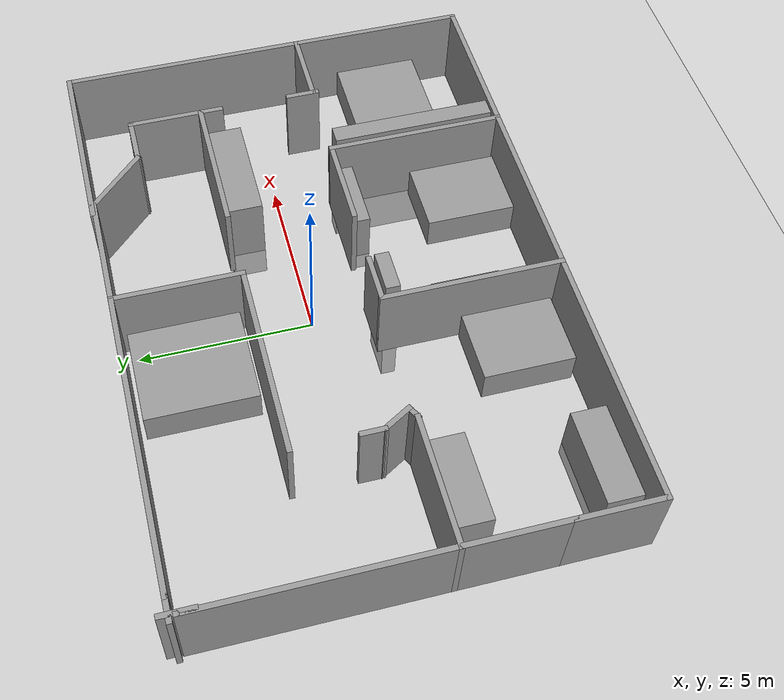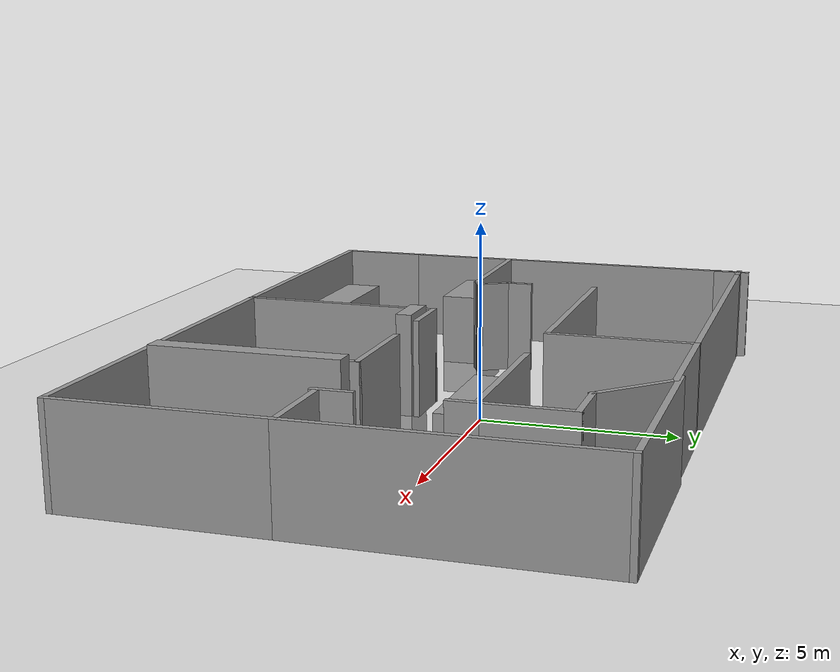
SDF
<sdf version="1.6">
 <world name="default">
  <light name="sun" type="directional">
   <pose>0 0 10 0 -0 0</pose>
   <diffuse>0.8 0.8 0.8 1</diffuse>
   <specular>0.2 0.2 0.2 1</specular>
   <attenuation>
    <range>1000</range>
    <constant>0.9</constant>
    <linear>0.01</linear>
    <quadratic>0.001</quadratic>
   </attenuation>
   <direction>-0.5 0.1 -0.9</direction>
  </light>
  <model name="ground_plane">
   <static>1</static>
   <link name="link">
    <collision name="collision">
     <geometry><plane><normal>0 0 1</normal><size>100 100</size></plane></geometry>
     <surface>
      <contact><collide_bitmask>65535</collide_bitmask></contact>
      <friction><ode><mu>100</mu><mu2>50</mu2></ode></friction>
     </surface>
    </collision>
    <visual name="visual">
     <cast_shadows>0</cast_shadows>
     <geometry><plane><normal>0 0 1</normal><size>100 100</size></plane></geometry>
     <material>
      <script><uri>file://media/materials/scripts/gazebo.material</uri><name>Gazebo/Grey</name></script>
     </material>
    </visual>
   </link>
  </model>
  <gravity>0 0 -9.8</gravity>
  <magnetic_field>6e-06 2.3e-05 -4.2e-05</magnetic_field>
  <atmosphere type="adiabatic"/>
  <physics name="default_physics" default="0" type="ode">
   <max_step_size>0.001</max_step_size>
   <real_time_factor>1</real_time_factor>
   <real_time_update_rate>1000</real_time_update_rate>
  </physics>
  <scene><ambient>0.4 0.4 0.4 1</ambient><background>0.7 0.7 0.7 1</background><shadows>1</shadows></scene>
  <audio><device>default</device></audio>
  <spherical_coordinates>
   <surface_model>EARTH_WGS84</surface_model>
   <latitude_deg>0</latitude_deg>
   <longitude_deg>0</longitude_deg>
   <elevation>0</elevation>
   <heading_deg>0</heading_deg>
  </spherical_coordinates>
  <model name="obere_etage">
   <pose>0.059253 -0.557998 0 0 -0 0</pose>
   <link name="Wall_10">
    <collision name="Wall_10_Collision">
     <geometry><box><size>3.75 0.15 2.5</size></box></geometry>
     <pose>0 0 1.25 0 -0 0</pose>
    </collision>
    <visual name="Wall_10_Visual">
     <pose>0 0 1.25 0 -0 0</pose>
     <geometry><box><size>3.75 0.15 2.5</size></box></geometry>
     <material>
      <script><uri>file://media/materials/scripts/gazebo.material</uri><name>Gazebo/Grey</name></script>
      <ambient>1 1 1 1</ambient>
     </material>
     <meta><layer>0</layer></meta>
    </visual>
    <pose>0.407538 4.15765 0 0 -0 1.5708</pose>
   </link>
   <link name="Wall_11">
    <collision name="Wall_11_Collision">
     <geometry><box><size>3.5 0.15 2.5</size></box></geometry>
     <pose>0 0 1.25 0 -0 0</pose>
    </collision>
    <visual name="Wall_11_Visual">
     <pose>0 0 1.25 0 -0 0</pose>
     <geometry><box><size>3.5 0.15 2.5</size></box></geometry>
     <material>
      <script><uri>file://media/materials/scripts/gazebo.material</uri><name>Gazebo/Grey</name></script>
      <ambient>1 1 1 1</ambient>
     </material>
     <meta><layer>0</layer></meta>
    </visual>
    <pose>2.08254 5.95765 0 0 -0 0</pose>
   </link>
   <link name="Wall_12">
    <collision name="Wall_12_Collision">
     <geometry><box><size>2.25 0.15 2.5</size></box></geometry>
     <pose>0 0 1.25 0 -0 0</pose>
    </collision>
    <visual name="Wall_12_Visual">
     <pose>0 0 1.25 0 -0 0</pose>
     <geometry><box><size>2.25 0.15 2.5</size></box></geometry>
     <material>
      <script><uri>file://media/materials/scripts/gazebo.material</uri><name>Gazebo/Grey</name></script>
      <ambient>1 1 1 1</ambient>
     </material>
     <meta><layer>0</layer></meta>
    </visual>
    <pose>4.5 5.21519 0 0 -0 -0.785398</pose>
   </link>
   <link name="Wall_13">
    <collision name="Wall_13_Collision">
     <geometry><box><size>1.5 0.15 2.5</size></box></geometry>
     <pose>0 0 1.25 0 -0 0</pose>
    </collision>
    <visual name="Wall_13_Visual">
     <pose>0 0 1.25 0 -0 0</pose>
     <geometry><box><size>1.5 0.15 2.5</size></box></geometry>
     <material>
      <script><uri>file://media/materials/scripts/gazebo.material</uri><name>Gazebo/Grey</name></script>
      <ambient>1 1 1 1</ambient>
     </material>
     <meta><layer>0</layer></meta>
    </visual>
    <pose>5.91746 4.47273 0 0 -0 0</pose>
   </link>
   <link name="Wall_14">
    <collision name="Wall_14_Collision">
     <geometry><box><size>2.25 0.15 2.5</size></box></geometry>
     <pose>0 0 1.25 0 -0 0</pose>
    </collision>
    <visual name="Wall_14_Visual">
     <pose>0 0 1.25 0 -0 0</pose>
     <geometry><box><size>2.25 0.15 2.5</size></box></geometry>
     <material>
      <script><uri>file://media/materials/scripts/gazebo.material</uri><name>Gazebo/Grey</name></script>
      <ambient>1 1 1 1</ambient>
     </material>
     <meta><layer>0</layer></meta>
    </visual>
    <pose>6.59246 3.42273 0 0 -0 -1.5708</pose>
   </link>
   <link name="Wall_15">
    <collision name="Wall_15_Collision">
     <geometry><box><size>4.25 0.15 2.5</size></box></geometry>
     <pose>0 0 1.25 0 -0 0</pose>
    </collision>
    <visual name="Wall_15_Visual">
     <pose>0 0 1.25 0 -0 0</pose>
     <geometry><box><size>4.25 0.15 2.5</size></box></geometry>
     <material>
      <script><uri>file://media/materials/scripts/gazebo.material</uri><name>Gazebo/Grey</name></script>
      <ambient>1 1 1 1</ambient>
     </material>
     <meta><layer>0</layer></meta>
    </visual>
    <pose>4.54246 2.37273 0 0 -0 3.14159</pose>
   </link>
   <link name="Wall_23">
    <collision name="Wall_23_Collision">
     <geometry><box><size>0.75 0.15 2.5</size></box></geometry>
     <pose>0 0 1.25 0 -0 0</pose>
    </collision>
    <visual name="Wall_23_Visual">
     <pose>0 0 1.25 0 -0 0</pose>
     <geometry><box><size>0.75 0.15 2.5</size></box></geometry>
     <material>
      <script><uri>file://media/materials/scripts/gazebo.material</uri><name>Gazebo/Grey</name></script>
      <ambient>1 1 1 1</ambient>
     </material>
     <meta><layer>0</layer></meta>
    </visual>
    <pose>-5.19246 0.207654 0 0 -0 -1.5708</pose>
   </link>
   <link name="Wall_24">
    <collision name="Wall_24_Collision">
     <geometry><box><size>1 0.15 2.5</size></box></geometry>
     <pose>0 0 1.25 0 -0 0</pose>
    </collision>
    <visual name="Wall_24_Visual">
     <pose>0 0 1.25 0 -0 0</pose>
     <geometry><box><size>1 0.15 2.5</size></box></geometry>
     <material>
      <script><uri>file://media/materials/scripts/gazebo.material</uri><name>Gazebo/Grey</name></script>
      <ambient>1 1 1 1</ambient>
     </material>
     <meta><layer>0</layer></meta>
    </visual>
    <pose>-4.97996 -0.460407 0 0 -0 -1.0472</pose>
   </link>
   <link name="Wall_26">
    <collision name="Wall_26_Collision">
     <geometry><box><size>0.476016 0.15 2.5</size></box></geometry>
     <pose>0 0 1.25 0 -0 0</pose>
    </collision>
    <visual name="Wall_26_Visual">
     <pose>0 0 1.25 0 -0 0</pose>
     <geometry><box><size>0.476016 0.15 2.5</size></box></geometry>
     <material>
      <script><uri>file://media/materials/scripts/gazebo.material</uri><name>Gazebo/Grey</name></script>
      <ambient>1 1 1 1</ambient>
     </material>
     <meta><layer>0</layer></meta>
    </visual>
    <pose>-4.9125 -0.902869 0 0 -0 0.473976</pose>
   </link>
   <link name="Wall_40">
    <collision name="Wall_40_Collision">
     <geometry><box><size>8.75 0.15 2.5</size></box></geometry>
     <pose>0 0 1.25 0 -0 0</pose>
    </collision>
    <visual name="Wall_40_Visual">
     <pose>0 0 1.25 0 -0 0</pose>
     <geometry><box><size>8.75 0.15 2.5</size></box></geometry>
     <material>
      <script><uri>file://media/materials/scripts/gazebo.material</uri><name>Gazebo/Grey</name></script>
      <ambient>1 1 1 1</ambient>
     </material>
     <meta><layer>0</layer></meta>
    </visual>
    <pose>-3.89246 5.95765 0 0 -0 3.14159</pose>
   </link>
   <link name="Wall_45">
    <collision name="Wall_45_Collision">
     <geometry><box><size>9.75 0.15 2.5</size></box></geometry>
     <pose>0 0 1.25 0 -0 0</pose>
    </collision>
    <visual name="Wall_45_Visual">
     <pose>0 0 1.25 0 -0 0</pose>
     <geometry><box><size>9.75 0.15 2.5</size></box></geometry>
     <material>
      <script><uri>file://media/materials/scripts/gazebo.material</uri><name>Gazebo/Grey</name></script>
      <ambient>1 1 1 1</ambient>
     </material>
     <meta><layer>0</layer></meta>
    </visual>
    <pose>-8.65754 0.97273 0 0 -0 1.5708</pose>
   </link>
   <link name="Wall_49">
    <collision name="Wall_49_Collision">
     <geometry><box><size>3.75 0.15 2.5</size></box></geometry>
     <pose>0 0 1.25 0 -0 0</pose>
    </collision>
    <visual name="Wall_49_Visual">
     <pose>0 0 1.25 0 -0 0</pose>
     <geometry><box><size>3.75 0.15 2.5</size></box></geometry>
     <material>
      <script><uri>file://media/materials/scripts/gazebo.material</uri><name>Gazebo/Grey</name></script>
      <ambient>1 1 1 1</ambient>
     </material>
     <meta><layer>0</layer></meta>
    </visual>
    <pose>-6.85754 -0.97727 0 0 -0 3.14159</pose>
   </link>
   <link name="Wall_51">
    <collision name="Wall_51_Collision">
     <geometry><box><size>2.5 0.15 2.5</size></box></geometry>
     <pose>0 0 1.25 0 -0 0</pose>
    </collision>
    <visual name="Wall_51_Visual">
     <pose>0 0 1.25 0 -0 0</pose>
     <geometry><box><size>2.5 0.15 2.5</size></box></geometry>
     <material>
      <script><uri>file://media/materials/scripts/gazebo.material</uri><name>Gazebo/Grey</name></script>
      <ambient>1 1 1 1</ambient>
     </material>
     <meta><layer>0</layer></meta>
    </visual>
    <pose>-8.65754 -5.00227 0 0 -0 -1.5708</pose>
   </link>
   <link name="Wall_52">
    <collision name="Wall_52_Collision">
     <geometry><box><size>7.5 0.15 2.5</size></box></geometry>
     <pose>0 0 1.25 0 -0 0</pose>
    </collision>
    <visual name="Wall_52_Visual">
     <pose>0 0 1.25 0 -0 0</pose>
     <geometry><box><size>7.5 0.15 2.5</size></box></geometry>
     <material>
      <script><uri>file://media/materials/scripts/gazebo.material</uri><name>Gazebo/Grey</name></script>
      <ambient>1 1 1 1</ambient>
     </material>
     <meta><layer>0</layer></meta>
    </visual>
    <pose>-4.98254 -6.17727 0 0 -0 0</pose>
   </link>
   <link name="Wall_55">
    <collision name="Wall_55_Collision">
     <geometry><box><size>5.25 0.15 2.5</size></box></geometry>
     <pose>0 0 1.25 0 -0 0</pose>
    </collision>
    <visual name="Wall_55_Visual">
     <pose>0 0 1.25 0 -0 0</pose>
     <geometry><box><size>5.25 0.15 2.5</size></box></geometry>
     <material>
      <script><uri>file://media/materials/scripts/gazebo.material</uri><name>Gazebo/Grey</name></script>
      <ambient>1 1 1 1</ambient>
     </material>
     <meta><layer>0</layer></meta>
    </visual>
    <pose>-1.30754 -3.62727 0 0 -0 1.5708</pose>
   </link>
   <link name="Wall_61">
    <collision name="Wall_61_Collision">
     <geometry><box><size>1.5 0.15 2.5</size></box></geometry>
     <pose>0 0 1.25 0 -0 0</pose>
    </collision>
    <visual name="Wall_61_Visual">
     <pose>0 0 1.25 0 -0 0</pose>
     <geometry><box><size>1.5 0.15 2.5</size></box></geometry>
     <material>
      <script><uri>file://media/materials/scripts/gazebo.material</uri><name>Gazebo/Grey</name></script>
      <ambient>1 1 1 1</ambient>
     </material>
     <meta><layer>0</layer></meta>
    </visual>
    <pose>-0.632538 -1.07727 0 0 -0 0</pose>
   </link>
   <link name="Wall_63">
    <collision name="Wall_63_Collision">
     <geometry><box><size>2.75 0.15 2.5</size></box></geometry>
     <pose>0 0 1.25 0 -0 0</pose>
    </collision>
    <visual name="Wall_63_Visual">
     <pose>0 0 1.25 0 -0 0</pose>
     <geometry><box><size>2.75 0.15 2.5</size></box></geometry>
     <material>
      <script><uri>file://media/materials/scripts/gazebo.material</uri><name>Gazebo/Grey</name></script>
      <ambient>1 1 1 1</ambient>
     </material>
     <meta><layer>0</layer></meta>
    </visual>
    <pose>2.94246 -1.07727 0 0 -0 0</pose>
   </link>
   <link name="Wall_64">
    <collision name="Wall_64_Collision">
     <geometry><box><size>5.25 0.15 2.5</size></box></geometry>
     <pose>0 0 1.25 0 -0 0</pose>
    </collision>
    <visual name="Wall_64_Visual">
     <pose>0 0 1.25 0 -0 0</pose>
     <geometry><box><size>5.25 0.15 2.5</size></box></geometry>
     <material>
      <script><uri>file://media/materials/scripts/gazebo.material</uri><name>Gazebo/Grey</name></script>
      <ambient>1 1 1 1</ambient>
     </material>
     <meta><layer>0</layer></meta>
    </visual>
    <pose>4.24246 -3.62727 0 0 -0 -1.5708</pose>
   </link>
   <link name="Wall_65">
    <collision name="Wall_65_Collision">
     <geometry><box><size>5.7 0.15 2.5</size></box></geometry>
     <pose>0 0 1.25 0 -0 0</pose>
    </collision>
    <visual name="Wall_65_Visual">
     <pose>0 0 1.25 0 -0 0</pose>
     <geometry><box><size>5.7 0.15 2.5</size></box></geometry>
     <material>
      <script><uri>file://media/materials/scripts/gazebo.material</uri><name>Gazebo/Grey</name></script>
      <ambient>1 1 1 1</ambient>
     </material>
     <meta><layer>0</layer></meta>
    </visual>
    <pose>1.46746 -6.17727 0 0 -0 3.14159</pose>
   </link>
   <link name="Wall_67">
    <collision name="Wall_67_Collision">
     <geometry><box><size>0.15 0.15 2.5</size></box></geometry>
     <pose>0 0 1.25 0 -0 0</pose>
    </collision>
    <visual name="Wall_67_Visual">
     <pose>0 0 1.25 0 -0 0</pose>
     <geometry><box><size>0.15 0.15 2.5</size></box></geometry>
     <material>
      <script><uri>file://media/materials/scripts/gazebo.material</uri><name>Gazebo/Grey</name></script>
      <ambient>1 1 1 1</ambient>
     </material>
     <meta><layer>0</layer></meta>
    </visual>
    <pose>-8.65754 5.77273 0 0 -0 0</pose>
   </link>
   <link name="Wall_69">
    <collision name="Wall_69_Collision">
     <geometry><box><size>0.75 0.15 2.5</size></box></geometry>
     <pose>0 0 1.25 0 -0 0</pose>
    </collision>
    <visual name="Wall_69_Visual">
     <pose>0 0 1.25 0 -0 0</pose>
     <geometry><box><size>0.75 0.15 2.5</size></box></geometry>
     <material>
      <script><uri>file://media/materials/scripts/gazebo.material</uri><name>Gazebo/Grey</name></script>
      <ambient>1 1 1 1</ambient>
     </material>
     <meta><layer>0</layer></meta>
    </visual>
    <pose>-8.49246 5.95765 0 0 -0 3.14159</pose>
   </link>
   <link name="Wall_72">
    <collision name="Wall_72_Collision">
     <geometry><box><size>1 0.15 2.5</size></box></geometry>
     <pose>0 0 1.25 0 -0 0</pose>
    </collision>
    <visual name="Wall_72_Visual">
     <pose>0 0 1.25 0 -0 0</pose>
     <geometry><box><size>1 0.15 2.5</size></box></geometry>
     <material>
      <script><uri>file://media/materials/scripts/gazebo.material</uri><name>Gazebo/Grey</name></script>
      <ambient>1 1 1 1</ambient>
     </material>
     <meta><layer>0</layer></meta>
    </visual>
    <pose>-8.62728 5.75227 0 0 -0 1.5708</pose>
   </link>
   <link name="Wall_77">
    <collision name="Wall_77_Collision">
     <geometry><box><size>5.25 0.15 2.5</size></box></geometry>
     <pose>0 0 1.25 0 -0 0</pose>
    </collision>
    <visual name="Wall_77_Visual">
     <pose>0 0 1.25 0 -0 0</pose>
     <geometry><box><size>5.25 0.15 2.5</size></box></geometry>
     <material>
      <script><uri>file://media/materials/scripts/gazebo.material</uri><name>Gazebo/Grey</name></script>
      <ambient>1 1 1 1</ambient>
     </material>
     <meta><layer>0</layer></meta>
    </visual>
    <pose>8.79246 -3.62727 0 0 -0 -1.5708</pose>
   </link>
   <link name="Wall_78">
    <collision name="Wall_78_Collision">
     <geometry><box><size>4.7 0.15 2.5</size></box></geometry>
     <pose>0 0 1.25 0 -0 0</pose>
    </collision>
    <visual name="Wall_78_Visual">
     <pose>0 0 1.25 0 -0 0</pose>
     <geometry><box><size>4.7 0.15 2.5</size></box></geometry>
     <material>
      <script><uri>file://media/materials/scripts/gazebo.material</uri><name>Gazebo/Grey</name></script>
      <ambient>1 1 1 1</ambient>
     </material>
     <meta><layer>0</layer></meta>
    </visual>
    <pose>6.51746 -6.17727 0 0 -0 3.14159</pose>
   </link>
   <link name="Wall_80">
    <collision name="Wall_80_Collision">
     <geometry><box><size>7.25 0.15 2.5</size></box></geometry>
     <pose>0 0 1.25 0 -0 0</pose>
    </collision>
    <visual name="Wall_80_Visual">
     <pose>0 0 1.25 0 -0 0</pose>
     <geometry><box><size>7.25 0.15 2.5</size></box></geometry>
     <material>
      <script><uri>file://media/materials/scripts/gazebo.material</uri><name>Gazebo/Grey</name></script>
      <ambient>1 1 1 1</ambient>
     </material>
     <meta><layer>0</layer></meta>
    </visual>
    <pose>8.79246 2.47273 0 0 -0 1.5708</pose>
   </link>
   <link name="Wall_81">
    <collision name="Wall_81_Collision">
     <geometry><box><size>5.5 0.15 2.5</size></box></geometry>
     <pose>0 0 1.25 0 -0 0</pose>
    </collision>
    <visual name="Wall_81_Visual">
     <pose>0 0 1.25 0 -0 0</pose>
     <geometry><box><size>5.5 0.15 2.5</size></box></geometry>
     <material>
      <script><uri>file://media/materials/scripts/gazebo.material</uri><name>Gazebo/Grey</name></script>
      <ambient>1 1 1 1</ambient>
     </material>
     <meta><layer>0</layer></meta>
    </visual>
    <pose>6.11746 6.02273 0 0 -0 3.14159</pose>
   </link>
   <link name="Wall_85">
    <collision name="Wall_85_Collision">
     <geometry><box><size>0.75 0.15 2.5</size></box></geometry>
     <pose>0 0 1.25 0 -0 0</pose>
    </collision>
    <visual name="Wall_85_Visual">
     <pose>0 0 1.25 0 -0 0</pose>
     <geometry><box><size>0.75 0.15 2.5</size></box></geometry>
     <material>
      <script><uri>file://media/materials/scripts/gazebo.material</uri><name>Gazebo/Grey</name></script>
      <ambient>1 1 1 1</ambient>
     </material>
     <meta><layer>0</layer></meta>
    </visual>
    <pose>6.59246 2.07273 0 0 -0 -1.5708</pose>
   </link>
   <link name="Wall_9">
    <collision name="Wall_9_Collision">
     <geometry><box><size>5.75 0.15 2.5</size></box></geometry>
     <pose>0 0 1.25 0 -0 0</pose>
    </collision>
    <visual name="Wall_9_Visual">
     <pose>0 0 1.25 0 -0 0</pose>
     <geometry><box><size>5.75 0.15 2.5</size></box></geometry>
     <material>
      <script><uri>file://media/materials/scripts/gazebo.material</uri><name>Gazebo/Grey</name></script>
      <ambient>1 1 1 1</ambient>
     </material>
     <meta><layer>0</layer></meta>
    </visual>
    <pose>-2.39246 2.35765 0 0 -0 0</pose>
   </link>
   <link name="Wall_90">
    <collision name="Wall_90_Collision">
     <geometry><box><size>1 0.15 2.5</size></box></geometry>
     <pose>0 0 1.25 0 -0 0</pose>
    </collision>
    <visual name="Wall_90_Visual">
     <pose>0 0 1.25 0 -0 0</pose>
     <geometry><box><size>1 0.15 2.5</size></box></geometry>
     <material>
      <script><uri>file://media/materials/scripts/gazebo.material</uri><name>Gazebo/Grey</name></script>
      <ambient>1 1 1 1</ambient>
     </material>
     <meta><layer>0</layer></meta>
    </visual>
    <pose>6.59246 -0.75227 0 0 -0 -1.5708</pose>
   </link>
   <link name="Wall_94">
    <collision name="Wall_94_Collision">
     <geometry><box><size>2.35 0.15 2.5</size></box></geometry>
     <pose>0 0 1.25 0 -0 0</pose>
    </collision>
    <visual name="Wall_94_Visual">
     <pose>0 0 1.25 0 -0 0</pose>
     <geometry><box><size>2.35 0.15 2.5</size></box></geometry>
     <material>
      <script><uri>file://media/materials/scripts/gazebo.material</uri><name>Gazebo/Grey</name></script>
      <ambient>1 1 1 1</ambient>
     </material>
     <meta><layer>0</layer></meta>
    </visual>
    <pose>7.69246 -1.07727 0 0 -0 0</pose>
   </link>
   <static>1</static>
  </model>
  <model name="model_obere_etage">
   <link name="link_0">
    <inertial>
     <mass>5.43615</mass>
     <inertia><ixx>3.55755</ixx><ixy>0</ixy><ixz>0</ixz><iyy>2.40643</iyy><iyz>0</iyz><izz>5.05795</izz></inertia>
    </inertial>
    <pose>2.60526 -2.5355 0 0 -0 0</pose>
    <visual name="visual">
     <geometry><box><size>2.07655 2.61784 1</size></box></geometry>
     <material>
      <lighting>1</lighting>
      <script><uri>file://media/materials/scripts/gazebo.material</uri><name>Gazebo/Grey</name></script>
     </material>
    </visual>
    <collision name="collision">
     <geometry><box><size>2.07655 2.61784 1</size></box></geometry>
     <surface>
      <friction>
       <ode><mu>1</mu><mu2>1</mu2><fdir1>0 0 0</fdir1><slip1>0</slip1><slip2>0</slip2></ode>
       <torsional>
        <coefficient>1</coefficient>
        <patch_radius>0</patch_radius>
        <surface_radius>0</surface_radius>
        <use_patch_radius>1</use_patch_radius>
        <ode><slip>0</slip></ode>
       </torsional>
      </friction>
      <bounce><restitution_coefficient>0</restitution_coefficient><threshold>1e+06</threshold></bounce>
      <contact>
       <collide_without_contact>0</collide_without_contact>
       <collide_without_contact_bitmask>1</collide_without_contact_bitmask>
       <collide_bitmask>1</collide_bitmask>
       <ode>
        <soft_cfm>0</soft_cfm>
        <soft_erp>0.2</soft_erp>
        <kp>1e+13</kp>
        <kd>1</kd>
        <max_vel>0.01</max_vel>
        <min_depth>0</min_depth>
       </ode>
       <bullet>
        <split_impulse>1</split_impulse>
        <split_impulse_penetration_threshold>-0.01</split_impulse_penetration_threshold>
        <soft_cfm>0</soft_cfm>
        <soft_erp>0.2</soft_erp>
        <kp>1e+13</kp>
        <kd>1</kd>
       </bullet>
      </contact>
     </surface>
    </collision>
   </link>
   <link name="link_0_clone">
    <inertial>
     <mass>5.95698</mass>
     <inertia><ixx>3.31395</ixx><ixy>0</ixy><ixz>0</ixz><iyy>3.59999</iyy><iyz>0</iyz><izz>5.9211</izz></inertia>
    </inertial>
    <pose>7.1259 -1.39406 0 0 0 -1.56982</pose>
    <visual name="visual">
     <geometry><box><size>2.50039 2.38238 1</size></box></geometry>
     <material>
      <lighting>1</lighting>
      <script><uri>file://media/materials/scripts/gazebo.material</uri><name>Gazebo/Grey</name></script>
      <shader type="pixel"/>
     </material>
    </visual>
    <collision name="collision">
     <geometry><box><size>2.50039 2.38238 1</size></box></geometry>
     <surface>
      <friction>
       <ode><mu>1</mu><mu2>1</mu2><fdir1>0 0 0</fdir1><slip1>0</slip1><slip2>0</slip2></ode>
       <torsional>
        <coefficient>1</coefficient>
        <patch_radius>0</patch_radius>
        <surface_radius>0</surface_radius>
        <use_patch_radius>1</use_patch_radius>
        <ode><slip>0</slip></ode>
       </torsional>
      </friction>
      <bounce><restitution_coefficient>0</restitution_coefficient><threshold>1e+06</threshold></bounce>
      <contact>
       <collide_without_contact>0</collide_without_contact>
       <collide_without_contact_bitmask>1</collide_without_contact_bitmask>
       <collide_bitmask>1</collide_bitmask>
       <ode>
        <soft_cfm>0</soft_cfm>
        <soft_erp>0.2</soft_erp>
        <kp>1e+13</kp>
        <kd>1</kd>
        <max_vel>0.01</max_vel>
        <min_depth>0</min_depth>
       </ode>
       <bullet>
        <split_impulse>1</split_impulse>
        <split_impulse_penetration_threshold>-0.01</split_impulse_penetration_threshold>
        <soft_cfm>0</soft_cfm>
        <soft_erp>0.2</soft_erp>
        <kp>1e+13</kp>
        <kd>1</kd>
       </bullet>
      </contact>
     </surface>
    </collision>
   </link>
   <link name="link_0_clone_0">
    <inertial>
     <mass>5.43615</mass>
     <inertia><ixx>3.55755</ixx><ixy>0</ixy><ixz>0</ixz><iyy>2.40643</iyy><iyz>0</iyz><izz>5.05795</izz></inertia>
    </inertial>
    <pose>-2.8829 -2.44973 0 0 -0 0</pose>
    <visual name="visual">
     <geometry><box><size>2.07655 2.61784 1</size></box></geometry>
     <material>
      <lighting>1</lighting>
      <script><uri>file://media/materials/scripts/gazebo.material</uri><name>Gazebo/Grey</name></script>
      <shader type="pixel"/>
     </material>
    </visual>
    <collision name="collision">
     <geometry><box><size>2.07655 2.61784 1</size></box></geometry>
     <surface>
      <friction>
       <ode><mu>1</mu><mu2>1</mu2><fdir1>0 0 0</fdir1><slip1>0</slip1><slip2>0</slip2></ode>
       <torsional>
        <coefficient>1</coefficient>
        <patch_radius>0</patch_radius>
        <surface_radius>0</surface_radius>
        <use_patch_radius>1</use_patch_radius>
        <ode><slip>0</slip></ode>
       </torsional>
      </friction>
      <bounce><restitution_coefficient>0</restitution_coefficient><threshold>1e+06</threshold></bounce>
      <contact>
       <collide_without_contact>0</collide_without_contact>
       <collide_without_contact_bitmask>1</collide_without_contact_bitmask>
       <collide_bitmask>1</collide_bitmask>
       <ode>
        <soft_cfm>0</soft_cfm>
        <soft_erp>0.2</soft_erp>
        <kp>1e+13</kp>
        <kd>1</kd>
        <max_vel>0.01</max_vel>
        <min_depth>0</min_depth>
       </ode>
       <bullet>
        <split_impulse>1</split_impulse>
        <split_impulse_penetration_threshold>-0.01</split_impulse_penetration_threshold>
        <soft_cfm>0</soft_cfm>
        <soft_erp>0.2</soft_erp>
        <kp>1e+13</kp>
        <kd>1</kd>
       </bullet>
      </contact>
     </surface>
    </collision>
   </link>
   <link name="link_0_clone_0_clone">
    <inertial>
     <mass>8.88235</mass>
     <inertia><ixx>8.16503</ixx><ixy>0</ixy><ixz>0</ixz><iyy>6.56189</iyy><iyz>0</iyz><izz>13.2465</izz></inertia>
    </inertial>
    <pose>-1.60183 6.39966 0 0 -0 0</pose>
    <visual name="visual">
     <geometry><box><size>2.80447 3.16716 1</size></box></geometry>
     <material>
      <lighting>1</lighting>
      <script><uri>file://media/materials/scripts/gazebo.material</uri><name>Gazebo/Grey</name></script>
      <shader type="pixel"/>
     </material>
    </visual>
    <collision name="collision">
     <geometry><box><size>2.80447 3.16716 1</size></box></geometry>
     <surface>
      <friction>
       <ode><mu>1</mu><mu2>1</mu2><fdir1>0 0 0</fdir1><slip1>0</slip1><slip2>0</slip2></ode>
       <torsional>
        <coefficient>1</coefficient>
        <patch_radius>0</patch_radius>
        <surface_radius>0</surface_radius>
        <use_patch_radius>1</use_patch_radius>
        <ode><slip>0</slip></ode>
       </torsional>
      </friction>
      <bounce><restitution_coefficient>0</restitution_coefficient><threshold>1e+06</threshold></bounce>
      <contact>
       <collide_without_contact>0</collide_without_contact>
       <collide_without_contact_bitmask>1</collide_without_contact_bitmask>
       <collide_bitmask>1</collide_bitmask>
       <ode>
        <soft_cfm>0</soft_cfm>
        <soft_erp>0.2</soft_erp>
        <kp>1e+13</kp>
        <kd>1</kd>
        <max_vel>0.01</max_vel>
        <min_depth>0</min_depth>
       </ode>
       <bullet>
        <split_impulse>1</split_impulse>
        <split_impulse_penetration_threshold>-0.01</split_impulse_penetration_threshold>
        <soft_cfm>0</soft_cfm>
        <soft_erp>0.2</soft_erp>
        <kp>1e+13</kp>
        <kd>1</kd>
       </bullet>
      </contact>
     </surface>
    </collision>
   </link>
   <link name="link_1">
    <inertial>
     <mass>2.38453</mass>
     <inertia><ixx>1.0198</ixx><ixy>0</ixy><ixz>0</ixz><iyy>1.82581</iyy><iyz>0</iyz><izz>0.913437</izz></inertia>
    </inertial>
    <pose>2.71719 0.818814 0 0 -0 0</pose>
    <visual name="visual">
     <geometry><box><size>2.08003 0.519914 2.20494</size></box></geometry>
     <material>
      <lighting>1</lighting>
      <script><uri>file://media/materials/scripts/gazebo.material</uri><name>Gazebo/Grey</name></script>
     </material>
    </visual>
    <collision name="collision">
     <geometry><box><size>2.08003 0.519914 2.20494</size></box></geometry>
     <surface>
      <friction>
       <ode><mu>1</mu><mu2>1</mu2><fdir1>0 0 0</fdir1><slip1>0</slip1><slip2>0</slip2></ode>
       <torsional>
        <coefficient>1</coefficient>
        <patch_radius>0</patch_radius>
        <surface_radius>0</surface_radius>
        <use_patch_radius>1</use_patch_radius>
        <ode><slip>0</slip></ode>
       </torsional>
      </friction>
      <bounce><restitution_coefficient>0</restitution_coefficient><threshold>1e+06</threshold></bounce>
      <contact>
       <collide_without_contact>0</collide_without_contact>
       <collide_without_contact_bitmask>1</collide_without_contact_bitmask>
       <collide_bitmask>1</collide_bitmask>
       <ode>
        <soft_cfm>0</soft_cfm>
        <soft_erp>0.2</soft_erp>
        <kp>1e+13</kp>
        <kd>1</kd>
        <max_vel>0.01</max_vel>
        <min_depth>0</min_depth>
       </ode>
       <bullet>
        <split_impulse>1</split_impulse>
        <split_impulse_penetration_threshold>-0.01</split_impulse_penetration_threshold>
        <soft_cfm>0</soft_cfm>
        <soft_erp>0.2</soft_erp>
        <kp>1e+13</kp>
        <kd>1</kd>
       </bullet>
      </contact>
     </surface>
    </collision>
   </link>
   <link name="link_2">
    <inertial>
     <mass>2.05937</mass>
     <inertia><ixx>3.11743</ixx><ixy>0</ixy><ixz>0</ixz><iyy>3.33042</iyy><iyz>0</iyz><izz>0.270449</izz></inertia>
    </inertial>
    <pose>-0.952592 0.80988 0 0 -0 0</pose>
    <visual name="visual">
     <geometry><box><size>1.18681 0.409135 4.24239</size></box></geometry>
     <material>
      <lighting>1</lighting>
      <script><uri>file://media/materials/scripts/gazebo.material</uri><name>Gazebo/Grey</name></script>
     </material>
    </visual>
    <collision name="collision">
     <geometry><box><size>1.18681 0.409135 4.24239</size></box></geometry>
     <surface>
      <friction>
       <ode><mu>1</mu><mu2>1</mu2><fdir1>0 0 0</fdir1><slip1>0</slip1><slip2>0</slip2></ode>
       <torsional>
        <coefficient>1</coefficient>
        <patch_radius>0</patch_radius>
        <surface_radius>0</surface_radius>
        <use_patch_radius>1</use_patch_radius>
        <ode><slip>0</slip></ode>
       </torsional>
      </friction>
      <bounce><restitution_coefficient>0</restitution_coefficient><threshold>1e+06</threshold></bounce>
      <contact>
       <collide_without_contact>0</collide_without_contact>
       <collide_without_contact_bitmask>1</collide_without_contact_bitmask>
       <collide_bitmask>1</collide_bitmask>
       <ode>
        <soft_cfm>0</soft_cfm>
        <soft_erp>0.2</soft_erp>
        <kp>1e+13</kp>
        <kd>1</kd>
        <max_vel>0.01</max_vel>
        <min_depth>0</min_depth>
       </ode>
       <bullet>
        <split_impulse>1</split_impulse>
        <split_impulse_penetration_threshold>-0.01</split_impulse_penetration_threshold>
        <soft_cfm>0</soft_cfm>
        <soft_erp>0.2</soft_erp>
        <kp>1e+13</kp>
        <kd>1</kd>
       </bullet>
      </contact>
     </surface>
    </collision>
   </link>
   <link name="link_4">
    <inertial>
     <mass>2.0032</mass>
     <inertia>
      <ixx>0.836798</ixx>
      <ixy>0</ixy>
      <ixz>0</ixz>
      <iyy>0.333867</iyy>
      <iyz>0</iyz>
      <izz>0.836798</izz>
     </inertia>
    </inertial>
    <pose>-1.07446 -1.64108 0 0 -0 0</pose>
    <visual name="visual">
     <geometry><box><size>1 2.00319 1</size></box></geometry>
     <material>
      <lighting>1</lighting>
      <script><uri>file://media/materials/scripts/gazebo.material</uri><name>Gazebo/Grey</name></script>
     </material>
    </visual>
    <collision name="collision">
     <geometry><box><size>1 2.00319 1</size></box></geometry>
     <surface>
      <friction>
       <ode><mu>1</mu><mu2>1</mu2><fdir1>0 0 0</fdir1><slip1>0</slip1><slip2>0</slip2></ode>
       <torsional>
        <coefficient>1</coefficient>
        <patch_radius>0</patch_radius>
        <surface_radius>0</surface_radius>
        <use_patch_radius>1</use_patch_radius>
        <ode><slip>0</slip></ode>
       </torsional>
      </friction>
      <bounce><restitution_coefficient>0</restitution_coefficient><threshold>1e+06</threshold></bounce>
      <contact>
       <collide_without_contact>0</collide_without_contact>
       <collide_without_contact_bitmask>1</collide_without_contact_bitmask>
       <collide_bitmask>1</collide_bitmask>
       <ode>
        <soft_cfm>0</soft_cfm>
        <soft_erp>0.2</soft_erp>
        <kp>1e+13</kp>
        <kd>1</kd>
        <max_vel>0.01</max_vel>
        <min_depth>0</min_depth>
       </ode>
       <bullet>
        <split_impulse>1</split_impulse>
        <split_impulse_penetration_threshold>-0.01</split_impulse_penetration_threshold>
        <soft_cfm>0</soft_cfm>
        <soft_erp>0.2</soft_erp>
        <kp>1e+13</kp>
        <kd>1</kd>
       </bullet>
      </contact>
     </surface>
    </collision>
   </link>
   <link name="link_6">
    <inertial>
     <mass>10.5846</mass>
     <inertia><ixx>36.2679</ixx><ixy>0</ixy><ixz>0</ixz><iyy>16.7018</iyy><iyz>0</iyz><izz>20.037</izz></inertia>
    </inertial>
    <pose>4.1768 -1.36787 0 0 -0 0</pose>
    <visual name="visual">
     <geometry><box><size>0.51664 4.73809 4.32067</size></box></geometry>
     <material>
      <lighting>1</lighting>
      <script><uri>file://media/materials/scripts/gazebo.material</uri><name>Gazebo/Grey</name></script>
     </material>
    </visual>
    <collision name="collision">
     <geometry><box><size>0.51664 4.73809 4.32067</size></box></geometry>
     <surface>
      <friction>
       <ode><mu>1</mu><mu2>1</mu2><fdir1>0 0 0</fdir1><slip1>0</slip1><slip2>0</slip2></ode>
       <torsional>
        <coefficient>1</coefficient>
        <patch_radius>0</patch_radius>
        <surface_radius>0</surface_radius>
        <use_patch_radius>1</use_patch_radius>
        <ode><slip>0</slip></ode>
       </torsional>
      </friction>
      <bounce><restitution_coefficient>0</restitution_coefficient><threshold>1e+06</threshold></bounce>
      <contact>
       <collide_without_contact>0</collide_without_contact>
       <collide_without_contact_bitmask>1</collide_without_contact_bitmask>
       <collide_bitmask>1</collide_bitmask>
       <ode>
        <soft_cfm>0</soft_cfm>
        <soft_erp>0.2</soft_erp>
        <kp>1e+13</kp>
        <kd>1</kd>
        <max_vel>0.01</max_vel>
        <min_depth>0</min_depth>
       </ode>
       <bullet>
        <split_impulse>1</split_impulse>
        <split_impulse_penetration_threshold>-0.01</split_impulse_penetration_threshold>
        <soft_cfm>0</soft_cfm>
        <soft_erp>0.2</soft_erp>
        <kp>1e+13</kp>
        <kd>1</kd>
       </bullet>
      </contact>
     </surface>
    </collision>
   </link>
   <link name="link_7">
    <inertial>
     <mass>7.08942</mass>
     <inertia><ixx>5.38186</ixx><ixy>0</ixy><ixz>0</ixz><iyy>8.45278</iyy><iyz>0</iyz><izz>4.25249</izz></inertia>
    </inertial>
    <pose>-7.11724 0.626094 0 0 -0 0</pose>
    <visual name="visual">
     <geometry><box><size>2.48958 1 2.84775</size></box></geometry>
     <material>
      <lighting>1</lighting>
      <script><uri>file://media/materials/scripts/gazebo.material</uri><name>Gazebo/Grey</name></script>
     </material>
    </visual>
    <collision name="collision">
     <geometry><box><size>2.48958 1 2.84775</size></box></geometry>
     <surface>
      <friction>
       <ode><mu>1</mu><mu2>1</mu2><fdir1>0 0 0</fdir1><slip1>0</slip1><slip2>0</slip2></ode>
       <torsional>
        <coefficient>1</coefficient>
        <patch_radius>0</patch_radius>
        <surface_radius>0</surface_radius>
        <use_patch_radius>1</use_patch_radius>
        <ode><slip>0</slip></ode>
       </torsional>
      </friction>
      <bounce><restitution_coefficient>0</restitution_coefficient><threshold>1e+06</threshold></bounce>
      <contact>
       <collide_without_contact>0</collide_without_contact>
       <collide_without_contact_bitmask>1</collide_without_contact_bitmask>
       <collide_bitmask>1</collide_bitmask>
       <ode>
        <soft_cfm>0</soft_cfm>
        <soft_erp>0.2</soft_erp>
        <kp>1e+13</kp>
        <kd>1</kd>
        <max_vel>0.01</max_vel>
        <min_depth>0</min_depth>
       </ode>
       <bullet>
        <split_impulse>1</split_impulse>
        <split_impulse_penetration_threshold>-0.01</split_impulse_penetration_threshold>
        <soft_cfm>0</soft_cfm>
        <soft_erp>0.2</soft_erp>
        <kp>1e+13</kp>
        <kd>1</kd>
       </bullet>
      </contact>
     </surface>
    </collision>
   </link>
   <link name="link_8">
    <inertial>
     <mass>5.51213</mass>
     <inertia><ixx>2.42861</ixx><ixy>0</ixy><ixz>0</ixz><iyy>5.22461</iyy><iyz>0</iyz><izz>3.71468</izz></inertia>
    </inertial>
    <pose>-7.1347 -3.29224 0 0 -0 0</pose>
    <visual name="visual">
     <geometry><box><size>2.66213 1 2.07054</size></box></geometry>
     <material>
      <lighting>1</lighting>
      <script><uri>file://media/materials/scripts/gazebo.material</uri><name>Gazebo/Grey</name></script>
     </material>
    </visual>
    <collision name="collision">
     <geometry><box><size>2.66213 1 2.07054</size></box></geometry>
     <surface>
      <friction>
       <ode><mu>1</mu><mu2>1</mu2><fdir1>0 0 0</fdir1><slip1>0</slip1><slip2>0</slip2></ode>
       <torsional>
        <coefficient>1</coefficient>
        <patch_radius>0</patch_radius>
        <surface_radius>0</surface_radius>
        <use_patch_radius>1</use_patch_radius>
        <ode><slip>0</slip></ode>
       </torsional>
      </friction>
      <bounce><restitution_coefficient>0</restitution_coefficient><threshold>1e+06</threshold></bounce>
      <contact>
       <collide_without_contact>0</collide_without_contact>
       <collide_without_contact_bitmask>1</collide_without_contact_bitmask>
       <collide_bitmask>1</collide_bitmask>
       <ode>
        <soft_cfm>0</soft_cfm>
        <soft_erp>0.2</soft_erp>
        <kp>1e+13</kp>
        <kd>1</kd>
        <max_vel>0.01</max_vel>
        <min_depth>0</min_depth>
       </ode>
       <bullet>
        <split_impulse>1</split_impulse>
        <split_impulse_penetration_threshold>-0.01</split_impulse_penetration_threshold>
        <soft_cfm>0</soft_cfm>
        <soft_erp>0.2</soft_erp>
        <kp>1e+13</kp>
        <kd>1</kd>
       </bullet>
      </contact>
     </surface>
    </collision>
   </link>
   <link name="link_9">
    <inertial>
     <mass>9.6996</mass>
     <inertia><ixx>8.44221</ixx><ixy>0</ixy><ixz>0</ixz><iyy>15.685</iyy><iyz>0</iyz><izz>8.85934</izz></inertia>
    </inertial>
    <pose>4.13858 4.02605 0 0 -0 0</pose>
    <visual name="visual">
     <geometry><box><size>3.15602 1 3.07317</size></box></geometry>
     <material>
      <lighting>1</lighting>
      <script><uri>file://media/materials/scripts/gazebo.material</uri><name>Gazebo/Grey</name></script>
     </material>
    </visual>
    <collision name="collision">
     <geometry><box><size>3.15602 1 3.07317</size></box></geometry>
     <surface>
      <friction>
       <ode><mu>1</mu><mu2>1</mu2><fdir1>0 0 0</fdir1><slip1>0</slip1><slip2>0</slip2></ode>
       <torsional>
        <coefficient>1</coefficient>
        <patch_radius>0</patch_radius>
        <surface_radius>0</surface_radius>
        <use_patch_radius>1</use_patch_radius>
        <ode><slip>0</slip></ode>
       </torsional>
      </friction>
      <bounce><restitution_coefficient>0</restitution_coefficient><threshold>1e+06</threshold></bounce>
      <contact>
       <collide_without_contact>0</collide_without_contact>
       <collide_without_contact_bitmask>1</collide_without_contact_bitmask>
       <collide_bitmask>1</collide_bitmask>
       <ode>
        <soft_cfm>0</soft_cfm>
        <soft_erp>0.2</soft_erp>
        <kp>1e+13</kp>
        <kd>1</kd>
        <max_vel>0.01</max_vel>
        <min_depth>0</min_depth>
       </ode>
       <bullet>
        <split_impulse>1</split_impulse>
        <split_impulse_penetration_threshold>-0.01</split_impulse_penetration_threshold>
        <soft_cfm>0</soft_cfm>
        <soft_erp>0.2</soft_erp>
        <kp>1e+13</kp>
        <kd>1</kd>
       </bullet>
      </contact>
     </surface>
    </collision>
   </link>
   <static>1</static>
   <pose>0.460753 -2.79757 0.5 0 -0 0</pose>
  </model>
 </world>
</sdf>
